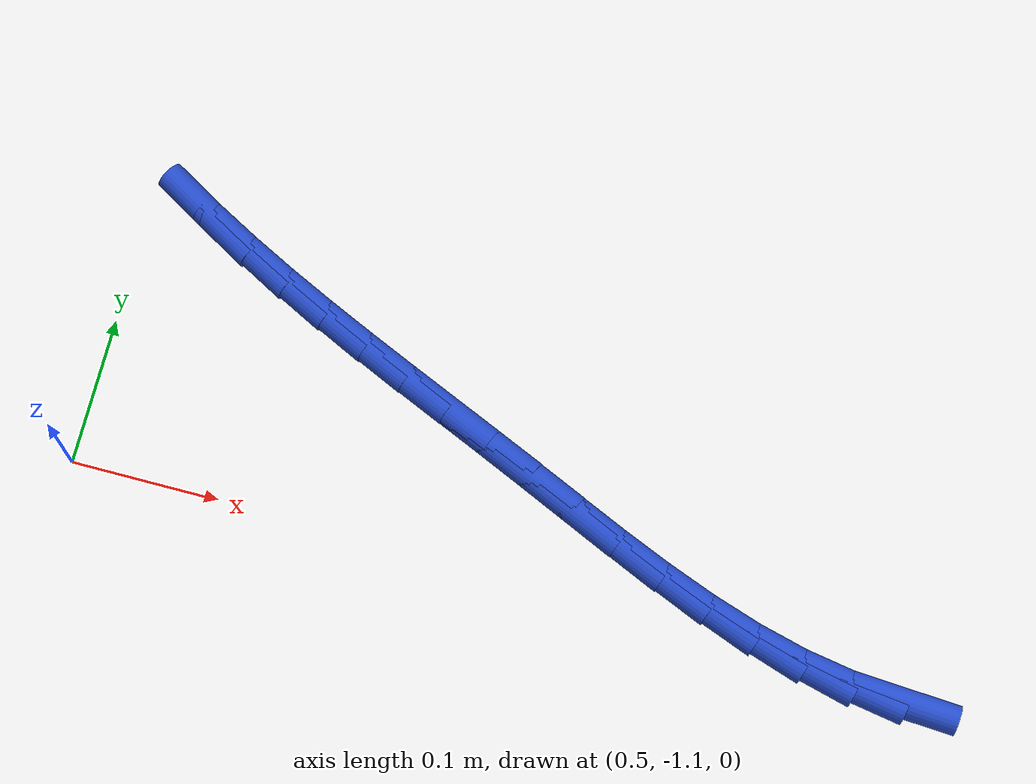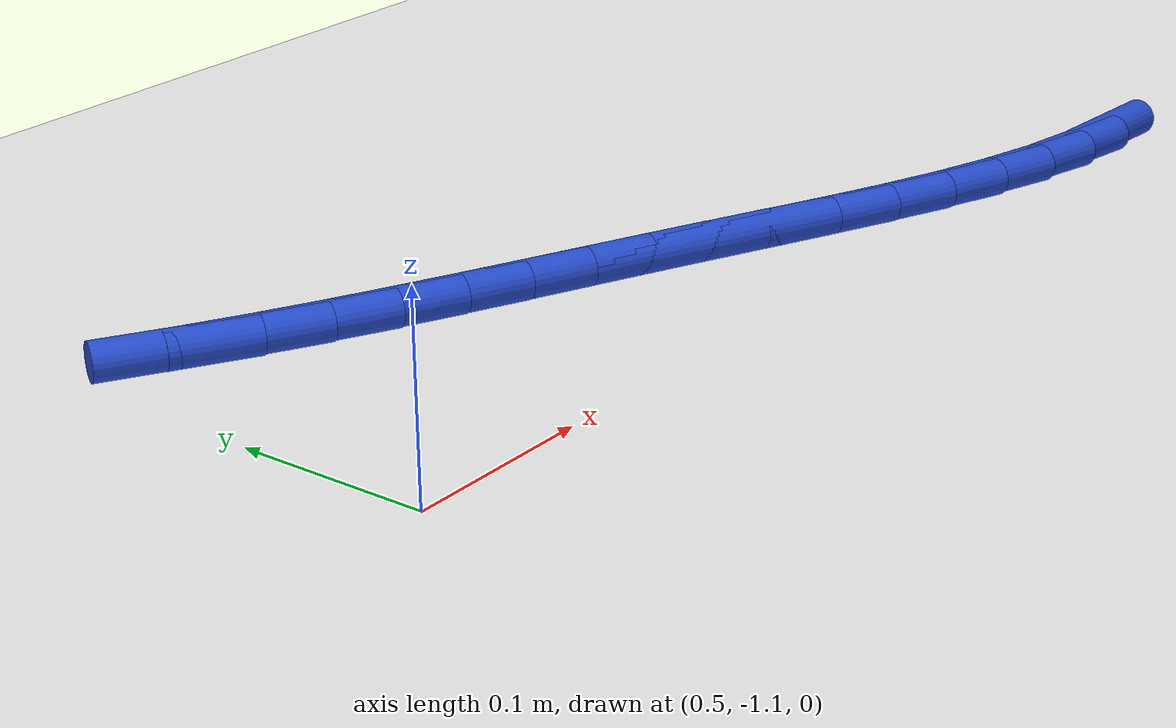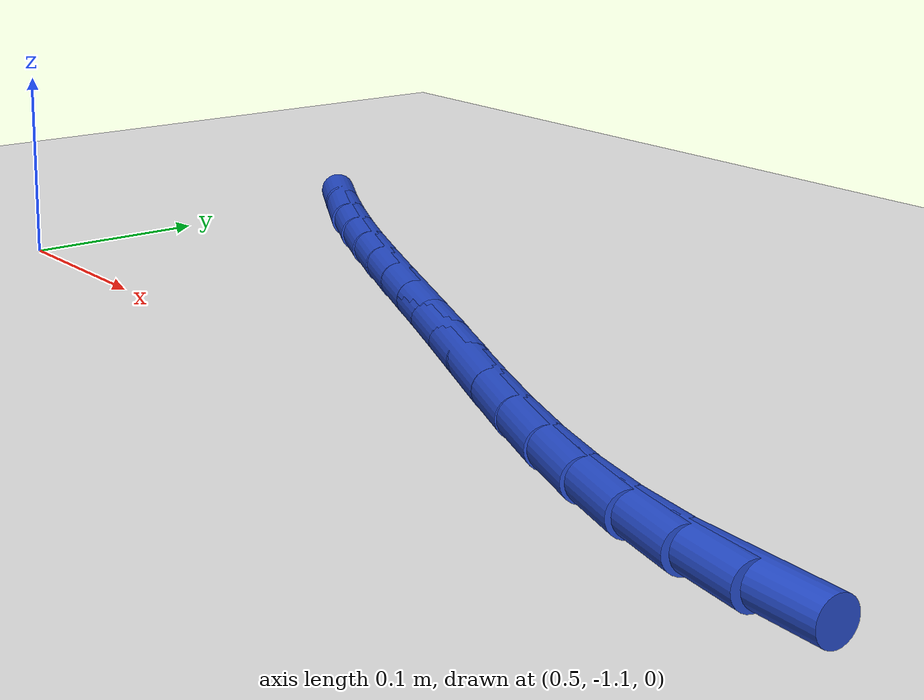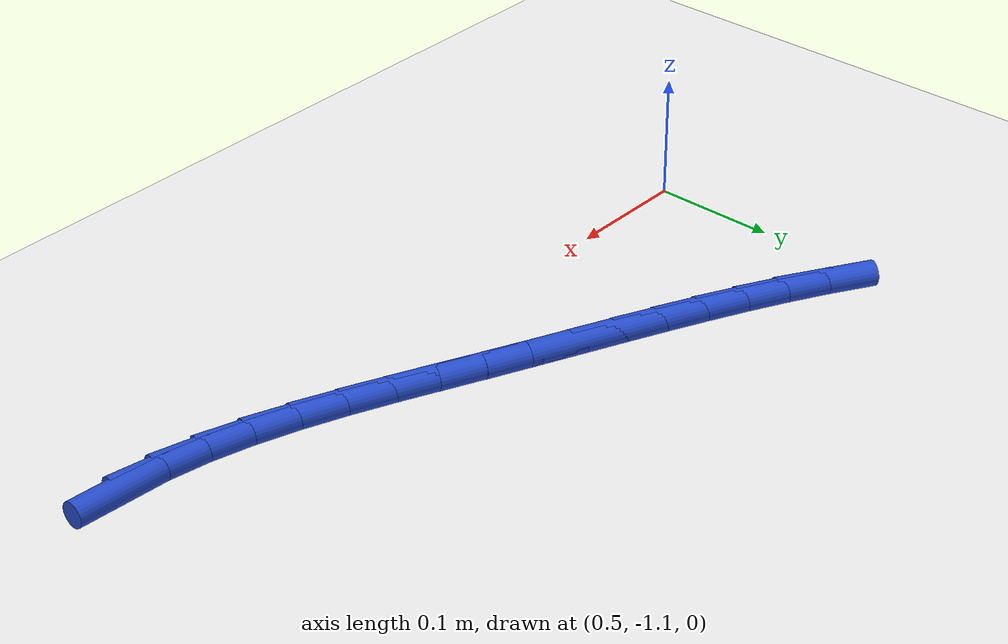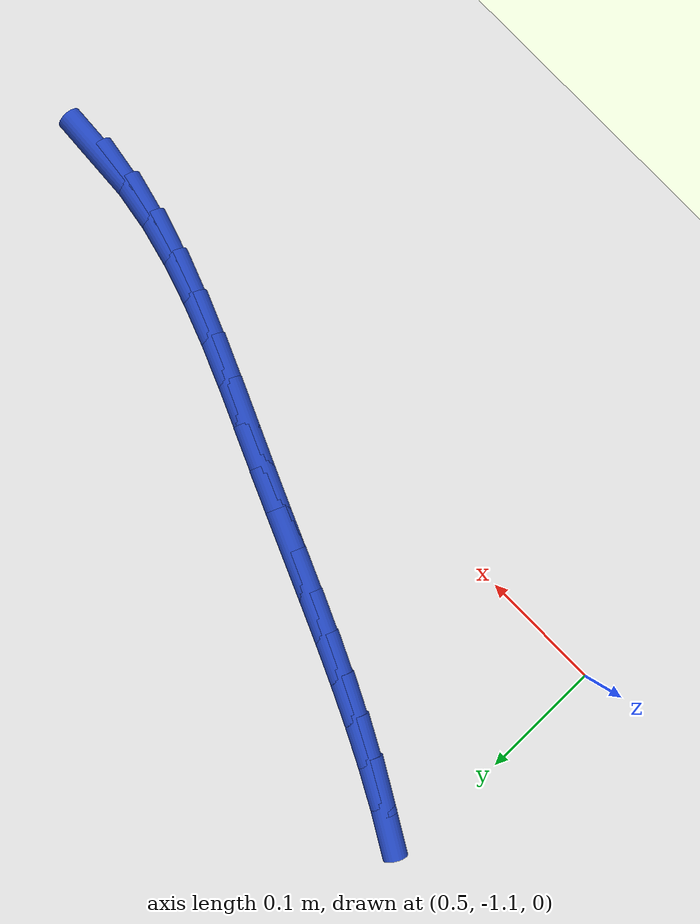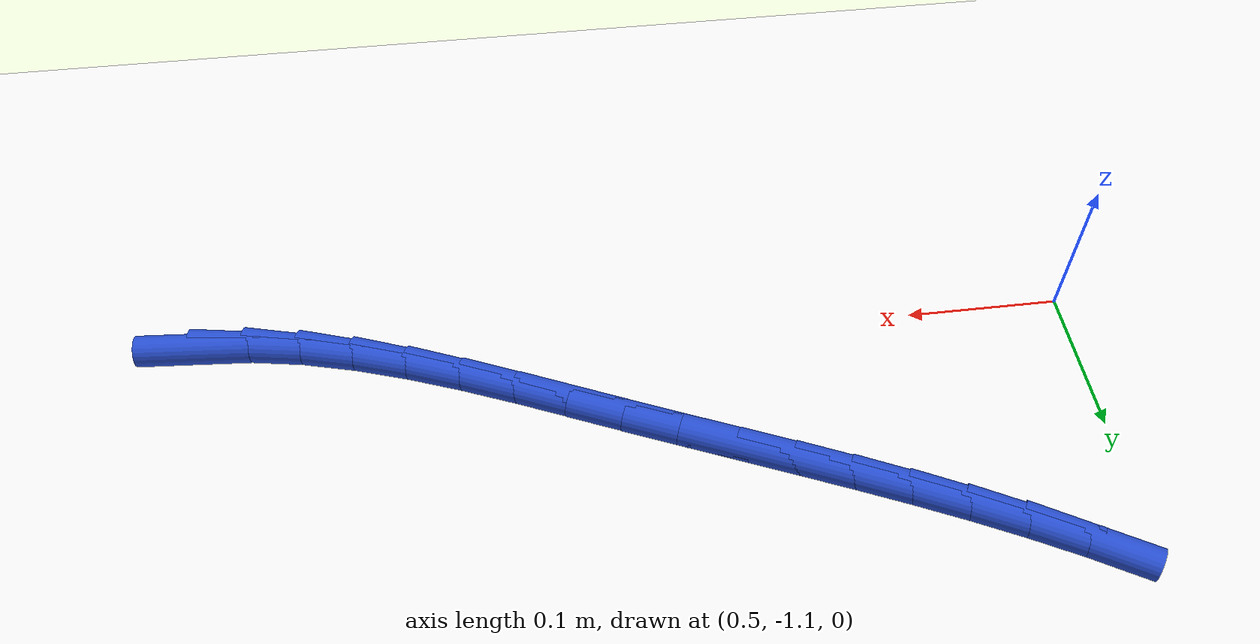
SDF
<sdf version="1.6">
 <world name="default">
  <model name="ground_plane">
   <static>1</static>
   <link name="link">
    <collision name="collision">
     <geometry><plane><normal>0 0 1</normal><size>100 100</size></plane></geometry>
     <surface><friction><ode><mu>100</mu><mu2>50</mu2></ode></friction></surface>
    </collision>
    <visual name="visual">
     <cast_shadows>0</cast_shadows>
     <geometry><plane><normal>0 0 1</normal><size>100 100</size></plane></geometry>
     <material>
      <script><uri>file://media/materials/scripts/gazebo.material</uri><name>Gazebo/WhiteGlow</name></script>
     </material>
    </visual>
   </link>
  </model>
  <model name="line">
   <link name="link_152">
    <pose>1.0604525277985701 -1.1181264726567233 0.01 0 1.57 -0.06856887600843037</pose>
    <collision name="collision">
     <geometry><cylinder><radius>0.01</radius><length>0.08</length></cylinder></geometry>
    </collision>
    <visual name="visual">
     <material>
      <script><name>Gazebo/Blue</name><uri>file://media/materials/scripts/gazebo.material</uri></script>
     </material>
     <geometry><cylinder><radius>0.01</radius><length>0.08</length></cylinder></geometry>
    </visual>
   </link>
   <link name="link_153">
    <pose>1.0273888375214313 -1.1158557727521814 0.01 0 1.57 -0.1719145738615942</pose>
    <collision name="collision">
     <geometry><cylinder><radius>0.01</radius><length>0.08</length></cylinder></geometry>
    </collision>
    <visual name="visual">
     <material>
      <script><name>Gazebo/Blue</name><uri>file://media/materials/scripts/gazebo.material</uri></script>
     </material>
     <geometry><cylinder><radius>0.01</radius><length>0.08</length></cylinder></geometry>
    </visual>
   </link>
   <link name="link_154">
    <pose>0.9940343170725512 -1.1100644786866927 0.01 0 1.57 -0.25500479978270435</pose>
    <collision name="collision">
     <geometry><cylinder><radius>0.01</radius><length>0.08</length></cylinder></geometry>
    </collision>
    <visual name="visual">
     <material>
      <script><name>Gazebo/Blue</name><uri>file://media/materials/scripts/gazebo.material</uri></script>
     </material>
     <geometry><cylinder><radius>0.01</radius><length>0.08</length></cylinder></geometry>
    </visual>
   </link>
   <link name="link_155">
    <pose>0.9604797018856013 -1.1013174650361763 0.01 0 1.57 -0.319517444767066</pose>
    <collision name="collision">
     <geometry><cylinder><radius>0.01</radius><length>0.08</length></cylinder></geometry>
    </collision>
    <visual name="visual">
     <material>
      <script><name>Gazebo/Blue</name><uri>file://media/materials/scripts/gazebo.material</uri></script>
     </material>
     <geometry><cylinder><radius>0.01</radius><length>0.08</length></cylinder></geometry>
    </visual>
   </link>
   <link name="link_156">
    <pose>0.9268157273942521 -1.0901796063765508 0.01 0 1.57 -0.3674061553578445</pose>
    <collision name="collision">
     <geometry><cylinder><radius>0.01</radius><length>0.08</length></cylinder></geometry>
    </collision>
    <visual name="visual">
     <material>
      <script><name>Gazebo/Blue</name><uri>file://media/materials/scripts/gazebo.material</uri></script>
     </material>
     <geometry><cylinder><radius>0.01</radius><length>0.08</length></cylinder></geometry>
    </visual>
   </link>
   <link name="link_157">
    <pose>0.893133129032174 -1.0772157772837359 0.01 0 1.57 -0.4003694427078698</pose>
    <collision name="collision">
     <geometry><cylinder><radius>0.01</radius><length>0.08</length></cylinder></geometry>
    </collision>
    <visual name="visual">
     <material>
      <script><name>Gazebo/Blue</name><uri>file://media/materials/scripts/gazebo.material</uri></script>
     </material>
     <geometry><cylinder><radius>0.01</radius><length>0.08</length></cylinder></geometry>
    </visual>
   </link>
   <link name="link_158">
    <pose>0.8595226422330378 -1.0629908523336498 0.01 0 1.57 -0.41960979691104355</pose>
    <collision name="collision">
     <geometry><cylinder><radius>0.01</radius><length>0.08</length></cylinder></geometry>
    </collision>
    <visual name="visual">
     <material>
      <script><name>Gazebo/Blue</name><uri>file://media/materials/scripts/gazebo.material</uri></script>
     </material>
     <geometry><cylinder><radius>0.01</radius><length>0.08</length></cylinder></geometry>
    </visual>
   </link>
   <link name="link_159">
    <pose>0.8260750024305142 -1.048069706102212 0.01 0 1.57 -0.42573542445707274</pose>
    <collision name="collision">
     <geometry><cylinder><radius>0.01</radius><length>0.08</length></cylinder></geometry>
    </collision>
    <visual name="visual">
     <material>
      <script><name>Gazebo/Blue</name><uri>file://media/materials/scripts/gazebo.material</uri></script>
     </material>
     <geometry><cylinder><radius>0.01</radius><length>0.08</length></cylinder></geometry>
    </visual>
   </link>
   <link name="link_160">
    <pose>0.7928809450582743 -1.033017213165342 0.01 0 1.57 -0.4199802065632252</pose>
    <collision name="collision">
     <geometry><cylinder><radius>0.01</radius><length>0.08</length></cylinder></geometry>
    </collision>
    <visual name="visual">
     <material>
      <script><name>Gazebo/Blue</name><uri>file://media/materials/scripts/gazebo.material</uri></script>
     </material>
     <geometry><cylinder><radius>0.01</radius><length>0.08</length></cylinder></geometry>
    </visual>
   </link>
   <link name="link_161">
    <pose>0.7600263514121637 -1.0183460336105452 0.01 0 1.57 -0.41355270628855983</pose>
    <collision name="collision">
     <geometry><cylinder><radius>0.01</radius><length>0.08</length></cylinder></geometry>
    </collision>
    <visual name="visual">
     <material>
      <script><name>Gazebo/Blue</name><uri>file://media/materials/scripts/gazebo.material</uri></script>
     </material>
     <geometry><cylinder><radius>0.01</radius><length>0.08</length></cylinder></geometry>
    </visual>
   </link>
   <link name="link_162">
    <pose>0.7275530290774622 -1.004094739987465 0.01 0 1.57 -0.41275735943088077</pose>
    <collision name="collision">
     <geometry><cylinder><radius>0.01</radius><length>0.08</length></cylinder></geometry>
    </collision>
    <visual name="visual">
     <material>
      <script><name>Gazebo/Blue</name><uri>file://media/materials/scripts/gazebo.material</uri></script>
     </material>
     <geometry><cylinder><radius>0.01</radius><length>0.08</length></cylinder></geometry>
    </visual>
   </link>
   <link name="link_163">
    <pose>0.6954792949453487 -0.9900492225735699 0.01 0 1.57 -0.4178775106640942</pose>
    <collision name="collision">
     <geometry><cylinder><radius>0.01</radius><length>0.08</length></cylinder></geometry>
    </collision>
    <visual name="visual">
     <material>
      <script><name>Gazebo/Blue</name><uri>file://media/materials/scripts/gazebo.material</uri></script>
     </material>
     <geometry><cylinder><radius>0.01</radius><length>0.08</length></cylinder></geometry>
    </visual>
   </link>
   <link name="link_164">
    <pose>0.6638232466670447 -0.9759930133486096 0.01 0 1.57 -0.42907598969401667</pose>
    <collision name="collision">
     <geometry><cylinder><radius>0.01</radius><length>0.08</length></cylinder></geometry>
    </collision>
    <visual name="visual">
     <material>
      <script><name>Gazebo/Blue</name><uri>file://media/materials/scripts/gazebo.material</uri></script>
     </material>
     <geometry><cylinder><radius>0.01</radius><length>0.08</length></cylinder></geometry>
    </visual>
   </link>
   <link name="link_165">
    <pose>0.632602981893773 -0.9617096442923332 0.01 0 1.57 -0.4464398418709691</pose>
    <collision name="collision">
     <geometry><cylinder><radius>0.01</radius><length>0.08</length></cylinder></geometry>
    </collision>
    <visual name="visual">
     <material>
      <script><name>Gazebo/Blue</name><uri>file://media/materials/scripts/gazebo.material</uri></script>
     </material>
     <geometry><cylinder><radius>0.01</radius><length>0.08</length></cylinder></geometry>
    </visual>
   </link>
   <link name="link_166">
    <pose>0.6018365982767551 -0.9469826473844901 0.01 0 1.57 -0.4699624319540136</pose>
    <collision name="collision">
     <geometry><cylinder><radius>0.01</radius><length>0.08</length></cylinder></geometry>
    </collision>
    <visual name="visual">
     <material>
      <script><name>Gazebo/Blue</name><uri>file://media/materials/scripts/gazebo.material</uri></script>
     </material>
     <geometry><cylinder><radius>0.01</radius><length>0.08</length></cylinder></geometry>
    </visual>
   </link>
   <link name="link_167">
    <pose>0.5715421934672144 -0.9315955546048302 0.01 0 1.57 -0.49952125888109583</pose>
    <collision name="collision">
     <geometry><cylinder><radius>0.01</radius><length>0.08</length></cylinder></geometry>
    </collision>
    <visual name="visual">
     <material>
      <script><name>Gazebo/Blue</name><uri>file://media/materials/scripts/gazebo.material</uri></script>
     </material>
     <geometry><cylinder><radius>0.01</radius><length>0.08</length></cylinder></geometry>
    </visual>
   </link>
   <link name="link_168">
    <pose>0.5417378651163713 -0.9153318979331023 0.01 0 1.57 -0.5347073656623558</pose>
    <collision name="collision">
     <geometry><cylinder><radius>0.01</radius><length>0.08</length></cylinder></geometry>
    </collision>
    <visual name="visual">
     <material>
      <script><name>Gazebo/Blue</name><uri>file://media/materials/scripts/gazebo.material</uri></script>
     </material>
     <geometry><cylinder><radius>0.01</radius><length>0.08</length></cylinder></geometry>
    </visual>
   </link>
  </model>
 </world>
</sdf>
